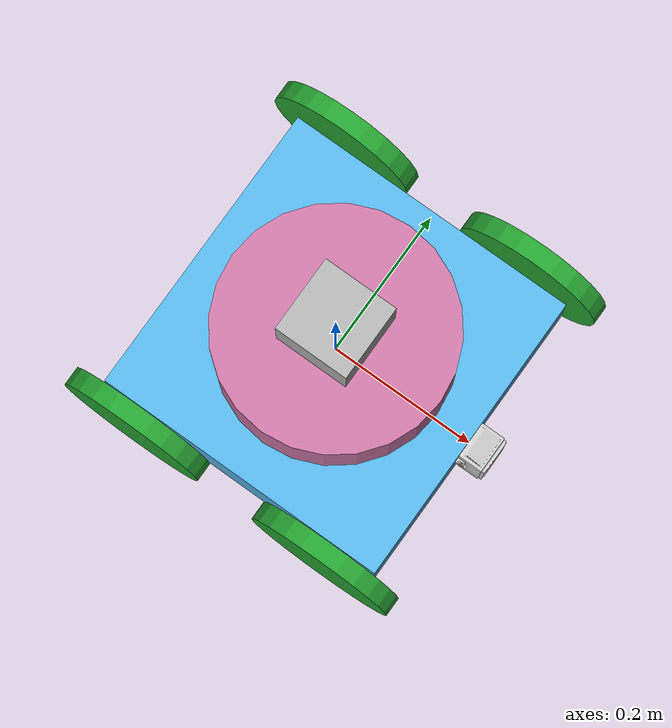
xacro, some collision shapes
<?xml version='1.0'?>

<robot name="new_robot" xmlns:xacro="http://www.ros.org/wiki/xacro">
<xacro:include filename="$(find my_robot)/urdf/new_robot.gazebo" />

<gazebo reference="wheel_right_front">
    <material>Gazebo/Green</material>
</gazebo>
<gazebo reference="wheel_right_back">
    <material>Gazebo/Green</material>
</gazebo>
<gazebo reference="wheel_left_front">
    <material>Gazebo/Green</material>
</gazebo>
<gazebo reference="wheel_left_back">
    <material>Gazebo/Green</material>
</gazebo>
<gazebo reference="wheel_right_center">
    <material>Gazebo/Green</material>
</gazebo>
<gazebo reference="wheel_left_center">
    <material>Gazebo/Green</material>
</gazebo>

<gazebo reference="chassis">
  <visual>
    <material>
      <ambient>0.8225 0.19225 0.19225 1.0</ambient>
      <diffuse>0.50754 0.50754 0.50754 1.0</diffuse>
      <specular>0.508273 0.508273 0.508273 1.0</specular>
      <emissive>0.0 0.0 0.0 0.0</emissive>
    </material>
  </visual>
</gazebo>
<gazebo reference="tower">
  <visual>
    <material>
      <ambient>0.8225 0.19225 0.19225 1.0</ambient>
      <diffuse>0.50754 0.50754 0.50754 1.0</diffuse>
      <specular>0.508273 0.508273 0.508273 1.0</specular>
      <emissive>0.0 0.0 0.0 0.0</emissive>
    </material>
  </visual>
</gazebo>
<gazebo reference="cap">
  <visual>
    <material>
      <ambient>0.8225 0.19225 0.19225 1.0</ambient>
      <diffuse>0.50754 0.50754 0.50754 1.0</diffuse>
      <specular>0.508273 0.508273 0.508273 1.0</specular>
      <emissive>0.0 0.0 0.0 0.0</emissive>
    </material>
  </visual>
</gazebo>

	<link name="robot_footprint"></link>

	<joint name="robot_footprint_joint" type="fixed">
		<origin xyz="0 0 0" rpy="0 0 0" />
		<parent link="robot_footprint"/>
		<child link="chassis" />
	</joint>

    <link name='chassis'>

		<inertial>
			<mass value="8.0"/>
		  	<origin xyz="0 0 0" rpy=" 0 0 0"/>
		  	<inertia
		      ixx="0.16" ixy="0" ixz="0"
		      iyy="0.16" iyz="0"
		      izz="0.16"/>
		</inertial>

		<collision>
		  	<origin xyz="0 0 0" rpy=" 0 0 -1.5707"/>
		  	<geometry>
		    	<box size="0.5 0.5 .1"/>
		  	</geometry>
		</collision>

		<visual>
		  	<origin xyz="0 0 0" rpy=" 0 0 -1.5707"/>
		  	<geometry>
		    	<box size="0.4 0.4 .1"/>
			</geometry>
		</visual>

	</link>

	<link name='wheel_left_front'>

		<inertial>
		<mass value="0.3"/>
		<origin xyz="0.0 0 0" rpy=" 0 0 0"/>
		<inertia
		  ixx="0.1" ixy="0" ixz="0"
		  iyy="0.1" iyz="0"
		  izz="0.1"/>
		</inertial>

		<visual>
			<origin xyz="0 0 0" rpy="1.5707 0 0"/>
			<geometry>
				<cylinder radius="0.1" length="0.025"/>
			</geometry>
		</visual>

		<collision>
			<origin xyz="0 0 0" rpy="1.5707 0 0"/>
			<geometry>
				<cylinder radius="0.1" length="0.025"/>
			</geometry>
		</collision>

	</link>

	<link name='wheel_left_back'>

        <inertial>
			<mass value="0.3"/>
			<origin xyz="0.0 0 0" rpy=" 0 0 0"/>
			<inertia
			  ixx="0.1" ixy="0" ixz="0"
			  iyy="0.1" iyz="0"
			  izz="0.1"/>
		</inertial>

		<visual>
			<origin xyz="0 0 0" rpy="1.5707 0 0"/>
			<geometry>
				<cylinder radius="0.1" length="0.025"/>
			</geometry>
		</visual>

		<collision>
			<origin xyz="0 0 0" rpy="1.5707 0 0"/>
			<geometry>
				<cylinder radius="0.1" length="0.025"/>
			</geometry>
		</collision>

	</link>

	<link name='wheel_right_front'>

		<inertial>
			<mass value="0.3"/>
			<origin xyz="0.0 0 0" rpy=" 0 0 0"/>
			<inertia
			  ixx="0.1" ixy="0" ixz="0"
			  iyy="0.1" iyz="0"
			  izz="0.1"/>
		</inertial>

		<visual>
			<origin xyz="0 0 0" rpy="1.5707 0 0"/>
			<geometry>
				<cylinder radius="0.1" length="0.025"/>
			</geometry>
		</visual>

		<collision>
			<origin xyz="0 0 0" rpy="1.5707 0 0"/>
			<geometry>
				<cylinder radius="0.1" length="0.025"/>
			</geometry>
		</collision>

    </link>

	<link name='wheel_right_back'>

		<inertial>
			<mass value="0.3"/>
			<origin xyz="0.0 0 0" rpy=" 0 0 0"/>
			<inertia
			  ixx="0.1" ixy="0" ixz="0"
			  iyy="0.1" iyz="0"
			  izz="0.1"/>
		</inertial>

		<visual>
			<origin xyz="0 0 0" rpy="1.5707 0 0"/>
			<geometry>
				<cylinder radius="0.1" length="0.025"/>
			</geometry>
		</visual>

		<collision>
			<origin xyz="0 0 0" rpy="1.5707 0 0"/>
			<geometry>
				<cylinder radius="0.1" length="0.025"/>
			</geometry>
		</collision>

    </link>

    <link name='tower'>

		<inertial>
			<mass value="1"/>
			<origin xyz="0.0 0 0" rpy=" 0 0 0"/>
			<inertia
			  ixx="0.1" ixy="0" ixz="0"
			  iyy="0.1" iyz="0"
			  izz="0.1"/>
		</inertial>

		<visual>
			<origin xyz="0 0 0" rpy="0 0 0"/>
			<geometry>
				<cylinder radius="0.15" length="0.12"/>
			</geometry>
		</visual>

		<collision>
			<origin xyz="0 0 0" rpy="0 0 0"/>
			<geometry>
				<cylinder radius="0.15" length="0.12"/>
			</geometry>
		</collision>

	</link>

	<joint name="chassis_tower" type="fixed">
		<origin xyz="0 0 0.10" rpy="0 0 0" />
		<parent link="chassis"/>
		<child link="tower" />
	</joint>

	<joint name="left_front_axis" type="continuous">
		<origin xyz="0.14 0.218 0.02" rpy="0 0 0"/>
		<child link="wheel_left_front"/>
		<parent link="chassis"/>
		<axis xyz="0 1 0" rpy="0 0 0"/>
		<limit effort="10000" velocity="1000"/>
		<dynamics damping="1.0" friction="1.0"/>
	</joint>

	<joint name="left_back_axis" type="continuous">
		<origin xyz="-0.14 0.218 0.02" rpy="0 0 0"/>
		<child link="wheel_left_back"/>
		<parent link="chassis"/>
		<axis xyz="0 1 0" rpy="0 0 0"/>
		<limit effort="10000" velocity="1000"/>
		<dynamics damping="1.0" friction="1.0"/>
	</joint>

	<joint name="right_back_axis" type="continuous">
		<origin xyz="-0.14 -0.218 0.02" rpy="0 0 0"/>
		<child link="wheel_right_back"/>
		<parent link="chassis"/>
		<axis xyz="0 1 0" rpy="0 0 0"/>
		<limit effort="10000" velocity="1000"/>
		<dynamics damping="1.0" friction="1.0"/>
	</joint>

	<joint name="right_front_axis" type="continuous">
		<origin xyz="0.14 -0.218 0.02" rpy="0 0 0"/>
		<child link="wheel_right_front"/>
		<parent link="chassis"/>
		<axis xyz="0 1 0" rpy="0 0 0"/>
		<limit effort="10000" velocity="1000"/>
		<dynamics damping="1.0" friction="1.0"/>
	</joint>

	<link name="hokuyo">
		<inertial>
		<mass value="1e-5"/>
		<origin xyz="0.0 0 0" rpy=" 0 0 0"/>
		<inertia
			ixx="1e-6" ixy="0" ixz="0"
			iyy="1e-6" iyz="0"
			izz="1e-6"/>
		</inertial>

		<collision>
		    <origin xyz="0 0 0" rpy="0 0 0" />
			<geometry>
			  <box size="0.1 0.1 0.1"/>
			</geometry>
		</collision>

		<visual>
			<origin xyz="0 0 0" rpy="0 0 0"/>
		    <geometry>
		      <mesh filename="package://my_robot/meshes/hokuyo.dae"/>
		    </geometry>
		</visual>
	</link>

  <joint type="fixed" name="hokuyo_joint">
    <origin xyz="0 0 0.08" rpy="0 0 0"/>
    <child link="hokuyo"/>
    <parent link="tower"/>
    <axis xyz="0 1 0" rpy="0 0 0"/>
  </joint>

	<link name="camera">
		<inertial>
			<mass value="1e-5"/>
			<origin xyz="0.0 0 0" rpy=" 0 0 0"/>
			<inertia
				ixx="1e-6" ixy="0" ixz="0"
				iyy="1e-6" iyz="0"
				izz="1e-6"/>
		</inertial>

		<collision>
		    <origin xyz="-0.03 0 0.05" rpy="0 0 0" />
			<geometry>
			  <box size="0.1 0.1 0.1"/>
			</geometry>
		</collision>

		<visual>
			<origin xyz="0 0 0" rpy="0 0 1.5707"/>
		    <geometry>
		      <mesh filename="package://my_robot/meshes/old_camera.dae" scale="0.035 0.035 0.035"/>
		    </geometry>
		</visual>
	</link>

  <joint type="fixed" name="camera_joint">
    <origin xyz="0.215 0 -0.03" rpy="0 0 0"/>
    <child link="camera"/>
    <parent link="chassis"/>
    <axis xyz="0 1 0" rpy="0 0 0"/>
  </joint>

  <joint name="camera_optical_joint" type="fixed">
    <origin xyz="0 0 0" rpy="-1.5707 0 -1.5707"/>
    <parent link="camera"/>
    <child link="camera_link_optical"/>
  </joint>

  <link name="camera_link_optical">
  </link>

</robot>
